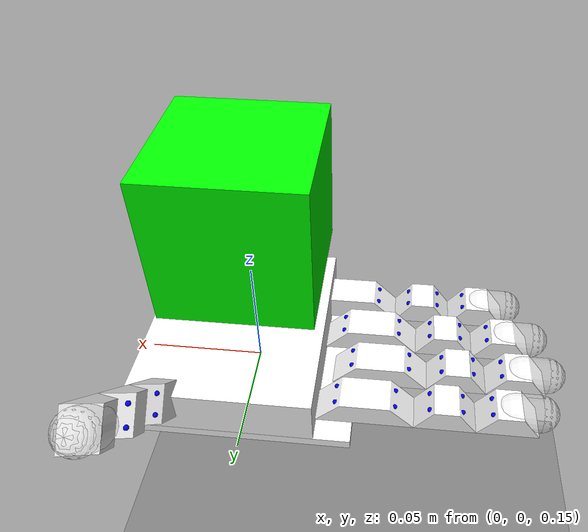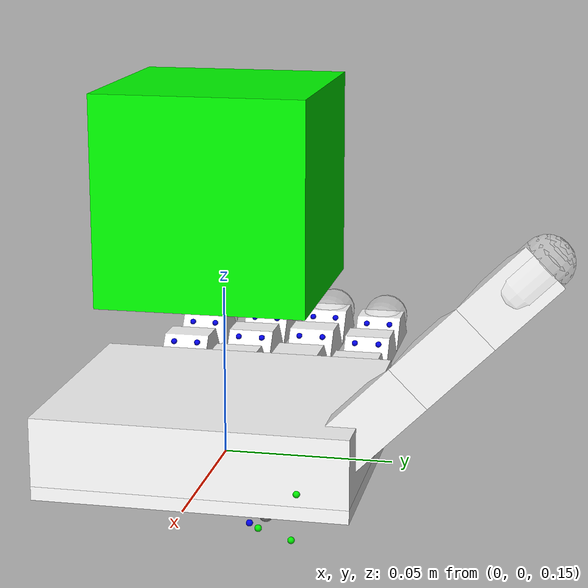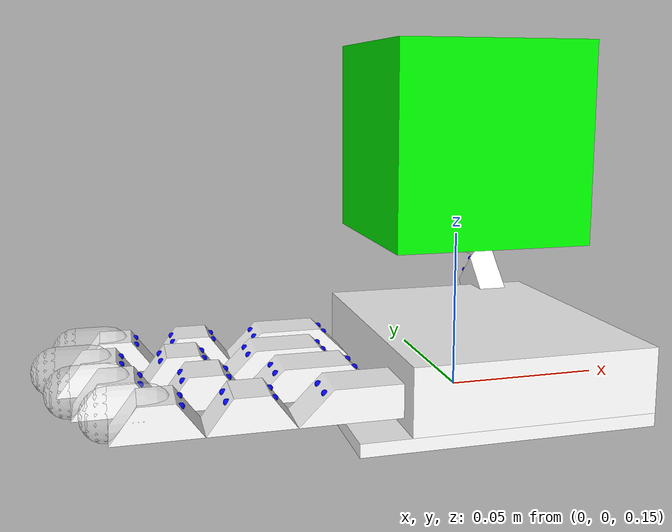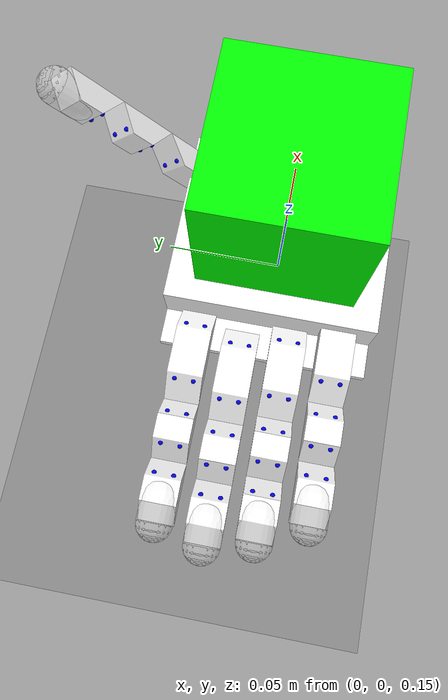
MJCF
<?xml version="1.0" ?>
<!-- Reorient手模型, 5x5 sphere tac sensors -->
<mujoco model="hand">
    <compiler angle="radian"/>
    <option integrator="implicitfast"/>
    <option>
        <flag filterparent="disable"/>
    </option>
    <option gravity="0 0 -9.81"/>
    <keyframe>
        <key name="home"
            qpos="0 0 0 0 0 0 0 0 0 0 0 0 0 0 0 0 0 0 0 0 0 0 0 0 0 0 0 0 0 0 0 0"
            qvel="0 0 0 0 0 0 0 0 0 0 0 0 0 0 0 0 0 0 0 0 0 0 0 0 0 0 0 0 0 0 0"
            ctrl="0 0 0 0 0 0 0 0 0"
        />
    </keyframe>
    <default>
        <geom solref="0.001 1" solimp="0.99 0.999 0.0001"/>
        <default class="cube">
            <geom friction=".3 0.05" conaffinity="2" condim="3"/>
        </default>
    </default>
    <contact>
        <exclude body1="palm" body2="thumb_link_1"/>
        <exclude body1="palm" body2="index_link_1"/>
        <exclude body1="palm" body2="middle_link_1"/>
        <exclude body1="palm" body2="ring_link_1"/>
        <exclude body1="palm" body2="little_link_1"/>
        <exclude body1="palm" body2="thumb_link_2"/>
        <exclude body1="palm" body2="index_link_2"/>
        <exclude body1="palm" body2="middle_link_2"/>
        <exclude body1="palm" body2="ring_link_2"/>
        <exclude body1="palm" body2="little_link_2"/>
        <exclude body1="palm" body2="thumb_link_3"/>
        <exclude body1="palm" body2="index_link_3"/>
        <exclude body1="palm" body2="middle_link_3"/>
        <exclude body1="palm" body2="ring_link_3"/>
        <exclude body1="palm" body2="little_link_3"/>
    </contact>
    <asset>
        <mesh name="thumb_base_link" file="./objs/thumb_base_link.obj"/>
        <mesh name="thumb_link_1" file="./objs/thumb_link_1.obj"/>
        <mesh name="thumb_link_2" file="./objs/thumb_link_2.obj"/>
        <mesh name="thumb_link_3" file="./objs/thumb_link_3.obj"/>
        <mesh name="index_base_link" file="./objs/index_base_link.obj"/>
        <mesh name="index_link_1" file="./objs/index_link_1.obj"/>
        <mesh name="index_link_2" file="./objs/index_link_2.obj"/>
        <mesh name="index_link_3" file="./objs/index_link_3.obj"/>
        <mesh name="middle_base_link" file="./objs/middle_base_link.obj"/>
        <mesh name="middle_link_1" file="./objs/middle_link_1.obj"/>
        <mesh name="middle_link_2" file="./objs/middle_link_2.obj"/>
        <mesh name="middle_link_3" file="./objs/middle_link_3.obj"/>
        <mesh name="ring_base_link" file="./objs/ring_base_link.obj"/>
        <mesh name="ring_link_1" file="./objs/ring_link_1.obj"/>
        <mesh name="ring_link_2" file="./objs/ring_link_2.obj"/>
        <mesh name="ring_link_3" file="./objs/ring_link_3.obj"/>
        <mesh name="little_base_link" file="./objs/little_base_link.obj"/>
        <mesh name="little_link_1" file="./objs/little_link_1.obj"/>
        <mesh name="little_link_2" file="./objs/little_link_2.obj"/>
        <mesh name="little_link_3" file="./objs/little_link_3.obj"/>
        <texture type="2d" name="groundplane" builtin="checker" mark="edge" rgb1="1 1 1" rgb2="0 0 0" markrgb="0 0 0" width="300" height="300"/>
        <material name="groundplane" texture="groundplane" texuniform="true" texrepeat="5 5" reflectance="0"/>
    </asset>
    <worldbody>
        <!-- 一些辅助元素 -->
        <geom name="floor" pos="0 0 0" size="0 0 0.01" type="plane" material="groundplane" contype="1" conaffinity="1" friction="1 0.05 0.05" solref="0.001 1" solimp="0.98 0.99 0.001"/>
        <!-- 手的定义 -->
        <body name="palm" pos="0 0 0.15" euler="3.14 3.14 0">
            <joint name="palm_slide_x" type="slide" axis="1 0 0" range="-.5 .5" limited="true" solreflimit=".001 1" solimplimit="0.97 0.99 0.00001 0.1 2" damping="0.2"/>
            <joint name="palm_slide_y" type="slide" axis="0 1 0" range="-.5 .5" limited="true" solreflimit=".001 1" solimplimit="0.97 0.99 0.00001 0.1 2" damping="0.2"/>
            <joint name="palm_slide_z" type="slide" axis="0 0 1" range="-.2 .12" limited="true" solreflimit=".001 1" solimplimit="0.97 0.99 0.00001 0.1 2" damping="0.2"/>
            <joint name="palm_rotate_x" type="hinge" axis="1 0 0" range="-1.57 1.57" limited="true" solreflimit=".001 1" solimplimit="0.97 0.99 0.00001 0.1 2" damping="0.2"/>
            <joint name="palm_rotate_y" type="hinge" axis="0 1 0" range="-1.57 1.57" limited="true" solreflimit=".001 1" solimplimit="0.97 0.99 0.00001 0.1 2" damping="0.2"/>
            <joint name="palm_rotate_z" type="hinge" axis="0 0 1" range="-3.14 3.14" limited="true" solreflimit=".001 1" solimplimit="0.97 0.99 0.00001 0.1 2" damping="0.2"/>
            <geom type="box" size="0.045 0.045 0.002" rgba="1 1 1 1" density="200"/>
            <geom type="box" size="0.0375 0.045 0.01" pos="-0.0075 0 0.012" rgba="1 1 1 1" density="200"/>
            <body name="thumb_base_link" pos="-0.035 -0.02 -0.005" euler="-0.785 0.0 -1.57">
                <geom conaffinity="0" contype="0" type="sphere" size=".002"/>
                <site name="thumb_ty_1_1" pos="0 0 0.01" size="0.001" rgba="0 0.9 0 1"/>
                <site name="thumb_ty_2_1" pos="0 0 -0.01" size="0.001" rgba="0 0.9 0 1"/>
                <site name="thumb_tx_1_1" pos="0 0.01 0" size="0.001" rgba="0 0.9 0 1"/>
                <site name="thumb_tx_2_1" pos="0 -0.01 0" size="0.001" rgba="0 0.9 0 1"/>
                <site name="thumb_t12" pos="0 0.01 0" size="0.001" rgba="0 0 0.9 1"/>
                <site name="thumb_t0" pos="-0.01 0.01 0" size="0.001" rgba="0 0 0.9 1"/>
                <body name="thumb_link_1" pos="0.015 0 0">
                    <joint name="thumb_universal_1" pos="0 0 0" axis="0 0 1" damping="0.1"/>
                    <joint name="thumb_universal_2" pos="0 0 0" axis="0 1 0" damping="0.1"/>
                    <geom type="box" pos="0.02 0.005 0" size="0.01 0.005 0.0075" name="thumb_link_1_box_center" density="200" friction="0.7 0.05 0.0002" solref="0.02 1.5" solimp="0.9 0.99 0.001" rgba="0 0 1 0"/>
                    <geom type="box" pos="0.03358578654972743 0.004999436911938167 0" size="0.0060674574081405145 0.001 0.0075" euler="0 0 -0.785" name="thumb_link_1_box_slope1" density="200" friction="0.7 0.05 0.0002" solref="0.02 1.5" solimp="0.9 0.99 0.001" rgba="0 0 1 0"/>
                    <geom type="box" pos="0.006414213450272566 0.005000563088061833 0" size="0.0060674574081405145 0.001 0.0075" euler="0 0 0.785" name="thumb_link_1_box_slope2" density="200" friction="0.7 0.05 0.0002" solref="0.02 1.5" solimp="0.9 0.99 0.001" rgba="0 0 1 0"/>
                    <geom type="box" pos="0.02 0.001 0" size="0.018000000000000002 0.001 0.0075" euler="0 0 0" name="thumb_link_1_box_bottom" density="200" friction="0.7 0.05 0.0002" solref="0.02 1.5" solimp="0.9 0.99 0.001" rgba="0 0 1 0"/>
                    <geom conaffinity="0" contype="0" type="mesh" rgba="1 1 1 1" mesh="thumb_link_1"/>
                    <site name="thumb_ty_1_2" pos="0 0 0.01" size="0.001" rgba="0 0.9 0 1"/>
                    <site name="thumb_ty_2_2" pos="0 0 -0.01" size="0.001" rgba="0 0.9 0 1"/>
                    <site name="thumb_tx_1_2" pos="0 0.01 0" size="0.001" rgba="0 0.9 0 1"/>
                    <site name="thumb_tx_2_2" pos="0 -0.01 0" size="0.001" rgba="0 0.9 0 1"/>
                    <site name="thumb_t1_1_1" pos="0.008 0.008 0.004" size="0.001" rgba="0 0 0.9 1"/>
                    <site name="thumb_t2_1_1" pos="0.008 0.008 -0.004" size="0.001" rgba="0 0 0.9 1"/>
                    <site name="thumb_t1_1_2" pos="0.032 0.008 0.004" size="0.001" rgba="0 0 0.9 1"/>
                    <site name="thumb_t2_1_2" pos="0.032 0.008 -0.004" size="0.001" rgba="0 0 0.9 1"/>
                    <body name="thumb_link_2" pos="0.04 0 0">
                        <joint name="thumb_joint_1" pos="0 0 0" axis="0 0 1" stiffness="0.1" springref="0.0" damping="0.2" range="0 3.14"/>
                        <geom type="box" pos="0.0125 0.005 0" size="0.005 0.005 0.0075" name="thumb_link_2_box_center" density="200" friction="0.7 0.05 0.0002" solref="0.02 1.5" solimp="0.9 0.99 0.001" rgba="0 0 1 0"/>
                        <geom type="box" pos="0.019849544644419077 0.005196786170816701 0" size="0.005477355448802637 0.001 0.0075" euler="0 0 -0.925" name="thumb_link_2_box_slope1" density="200" friction="0.7 0.05 0.0002" solref="0.02 1.5" solimp="0.9 0.99 0.001" rgba="0 0 1 0"/>
                        <geom type="box" pos="0.0051504553555809275 0.004803213829183299 0" size="0.005477355448802637 0.001 0.0075" euler="0 0 0.925" name="thumb_link_2_box_slope2" density="200" friction="0.7 0.05 0.0002" solref="0.02 1.5" solimp="0.9 0.99 0.001" rgba="0 0 1 0"/>
                        <geom type="box" pos="0.0125 0.001 0" size="0.0105 0.001 0.0075" euler="0 0 0" name="thumb_link_2_box_bottom" density="200" friction="0.7 0.05 0.0002" solref="0.02 1.5" solimp="0.9 0.99 0.001" rgba="0 0 1 0"/>
                        <geom conaffinity="0" contype="0" type="mesh" rgba="1 1 1 1" mesh="thumb_link_2"/>
                        <site name="thumb_t1_2_1" pos="0.006 0.008 0.004" size="0.001" rgba="0 0 0.9 1"/>
                        <site name="thumb_t2_2_1" pos="0.006 0.008 -0.004" size="0.001" rgba="0 0 0.9 1"/>
                        <site name="thumb_t1_2_2" pos="0.019000000000000003 0.008 0.004" size="0.001" rgba="0 0 0.9 1"/>
                        <site name="thumb_t2_2_2" pos="0.019000000000000003 0.008 -0.004" size="0.001" rgba="0 0 0.9 1"/>
                        <body name="thumb_link_3" pos="0.025 0 0">
                            <joint name="thumb_joint_2" pos="0 0 0" axis="0 0 1" stiffness="0.1" springref="0.0" damping="0.2" range="0 3.14"/>
                            <geom type="box" pos="0.0125 0.005 0" size="0.005 0.005 0.0075" name="thumb_link_3_box_center" density="200" friction="0.7 0.05 0.0002" solref="0.02 1.5" solimp="0.9 0.99 0.001" rgba="0 0 1 0"/>
                            <geom type="box" pos="0.0051504553555809275 0.004803213829183299 0" size="0.005477355448802637 0.001 0.0075" euler="0 0 0.925" name="thumb_link_3_box_slope2" density="200" friction="0.7 0.05 0.0002" solref="0.02 1.5" solimp="0.9 0.99 0.001" rgba="0 0 1 0"/>
                            <geom type="sphere" pos="0.025 0.006 0" size="0.0075" rgba="1 1 1 .3" density="200" friction="0.7 0.05 0.0002" solref="0.02 1.5" solimp="0.9 0.99 0.001"/>
                            <geom type="capsule" euler="0 1.57 0" pos="0.02 0.006 0" size="0.0075 0.005000000000000001" rgba="1 1 1 .3" density="200" friction="0.7 0.05 0.0002" solref="0.02 1.5" solimp="0.9 0.99 0.001"/>
                            <geom conaffinity="0" contype="0" type="mesh" rgba="1 1 1 1" mesh="thumb_link_3"/>
                            <site name="thumb_t1_3" pos="0.006 0.008 0.004" size="0.001" rgba="0 0 0.9 1"/>
                            <site name="thumb_t2_3" pos="0.006 0.008 -0.004" size="0.001" rgba="0 0 0.9 1"/>
                            <body name="thumb_fingertip" pos="0.02 0.01 0" euler="1.57 0 0">
                                <geom conaffinity="0" contype="0" type="sphere" pos="0 0 0" size=".001" rgba=".9 0 0 .1"/>
                            </body>
                        </body>
                    </body>
                </body>
            </body>
            <body name="index_base_link" pos="0.015 -0.03 0.005" euler="1.57 0.0 0.0">
                <!-- visable xyz frames -->
                <joint name="index_swing" axis="0 -1 0" range="0 0.5" damping="0.2"/>
                <geom conaffinity="0" contype="0" type="sphere" size=".002"/>
                <site name="index_t12" pos="0 0 0" size="0.001" rgba="0 0 0.9 1"/>
                <site name="index_t0" pos="-0.01 0 0" size="0.001" rgba="0 0 0.9 1"/>
                <body name="index_link_1" pos="0.015 0 0">
                    <!-- visable xyz frames -->
                    <joint name="index_joint_0" pos="0 0 0" axis="0 0 1" stiffness="0.2" springref="0.0" damping="0.2" range="0 3.14" frictionloss="0.08"/>
                    <geom type="box" pos="0.02 0.005 0" size="0.01 0.005 0.0075" name="index_link_1_box_center" density="200" friction="0.7 0.05 0.0002" solref="0.02 1.5" solimp="0.9 0.99 0.001" rgba="0 0 1 0"/>
                    <geom type="box" pos="0.03358578654972743 0.004999436911938167 0" size="0.0060674574081405145 0.001 0.0075" euler="0 0 -0.785" name="index_link_1_box_slope1" density="200" friction="0.7 0.05 0.0002" solref="0.02 1.5" solimp="0.9 0.99 0.001" rgba="0 0 1 0"/>
                    <geom type="box" pos="0.006414213450272566 0.005000563088061833 0" size="0.0060674574081405145 0.001 0.0075" euler="0 0 0.785" name="index_link_1_box_slope2" density="200" friction="0.7 0.05 0.0002" solref="0.02 1.5" solimp="0.9 0.99 0.001" rgba="0 0 1 0"/>
                    <geom type="box" pos="0.02 0.001 0" size="0.018000000000000002 0.001 0.0075" euler="0 0 0" name="index_link_1_box_bottom" density="200" friction="0.7 0.05 0.0002" solref="0.02 1.5" solimp="0.9 0.99 0.001" rgba="0 0 1 0"/>
                    <geom conaffinity="0" contype="0" type="mesh" rgba="1 1 1 1" mesh="index_link_1"/>
                    <site name="index_t1_1_1" pos="0.008 0.008 0.004" size="0.001" rgba="0 0 0.9 1"/>
                    <site name="index_t2_1_1" pos="0.008 0.008 -0.004" size="0.001" rgba="0 0 0.9 1"/>
                    <site name="index_t1_1_2" pos="0.032 0.008 0.004" size="0.001" rgba="0 0 0.9 1"/>
                    <site name="index_t2_1_2" pos="0.032 0.008 -0.004" size="0.001" rgba="0 0 0.9 1"/>
                    <body name="index_link_2" pos="0.04 0 0">
                        <!-- visable xyz frames -->
                        <joint name="index_joint_1" pos="0 0 0" axis="0 0 1" stiffness="0.2" springref="0.0" damping="0.05" range="0 3.14" frictionloss="0.04"/>
                        <geom type="box" pos="0.0125 0.005 0" size="0.005 0.005 0.0075" name="index_link_2_box_center" density="200" friction="0.7 0.05 0.0002" solref="0.02 1.5" solimp="0.9 0.99 0.001" rgba="0 0 1 0"/>
                        <geom type="box" pos="0.019849544644419077 0.005196786170816701 0" size="0.005477355448802637 0.001 0.0075" euler="0 0 -0.925" name="index_link_2_box_slope1" density="200" friction="0.7 0.05 0.0002" solref="0.02 1.5" solimp="0.9 0.99 0.001" rgba="0 0 1 0"/>
                        <geom type="box" pos="0.0051504553555809275 0.004803213829183299 0" size="0.005477355448802637 0.001 0.0075" euler="0 0 0.925" name="index_link_2_box_slope2" density="200" friction="0.7 0.05 0.0002" solref="0.02 1.5" solimp="0.9 0.99 0.001" rgba="0 0 1 0"/>
                        <geom type="box" pos="0.0125 0.001 0" size="0.0105 0.001 0.0075" euler="0 0 0" name="index_link_2_box_bottom" density="200" friction="0.7 0.05 0.0002" solref="0.02 1.5" solimp="0.9 0.99 0.001" rgba="0 0 1 0"/>
                        <geom conaffinity="0" contype="0" type="mesh" rgba="1 1 1 1" mesh="index_link_2"/>
                        <site name="index_t1_2_1" pos="0.006 0.008 0.004" size="0.001" rgba="0 0 0.9 1"/>
                        <site name="index_t2_2_1" pos="0.006 0.008 -0.004" size="0.001" rgba="0 0 0.9 1"/>
                        <site name="index_t1_2_2" pos="0.019000000000000003 0.008 0.004" size="0.001" rgba="0 0 0.9 1"/>
                        <site name="index_t2_2_2" pos="0.019000000000000003 0.008 -0.004" size="0.001" rgba="0 0 0.9 1"/>
                        <body name="index_link_3" pos="0.025 0 0">
                            <!-- visable xyz frames -->
                            <joint name="index_joint_2" pos="0 0 0" axis="0 0 1" stiffness="0.2" springref="0.0" damping="0.01" range="0 1.3" frictionloss="0.02"/>
                            <geom type="box" pos="0.0125 0.005 0" size="0.005 0.005 0.0075" name="index_link_3_box_center" density="200" friction="0.7 0.05 0.0002" solref="0.02 1.5" solimp="0.9 0.99 0.001" rgba="0 0 1 0"/>
                            <geom type="box" pos="0.0051504553555809275 0.004803213829183299 0" size="0.005477355448802637 0.001 0.0075" euler="0 0 0.925" name="index_link_3_box_slope2" density="200" friction="0.7 0.05 0.0002" solref="0.02 1.5" solimp="0.9 0.99 0.001" rgba="0 0 1 0"/>
                            <geom type="sphere" pos="0.025 0.006 0" size="0.0075" rgba="1 1 1 .3" density="200" friction="0.7 0.05 0.0002" solref="0.02 1.5" solimp="0.9 0.99 0.001"/>
                            <geom type="capsule" euler="0 1.57 0" pos="0.02 0.006 0" size="0.0075 0.005000000000000001" rgba="1 1 1 .3" density="200" friction="0.7 0.05 0.0002" solref="0.02 1.5" solimp="0.9 0.99 0.001"/>
                            <geom conaffinity="0" contype="0" type="mesh" rgba="1 1 1 1" mesh="index_link_3"/>
                            <site name="index_t1_3" pos="0.006 0.008 0.004" size="0.001" rgba="0 0 0.9 1"/>
                            <site name="index_t2_3" pos="0.006 0.008 -0.004" size="0.001" rgba="0 0 0.9 1"/>
                            <body name="index_fingertip" pos="0.02 0.01 0" euler="1.57 0 0">
                                <!-- visable xyz frames -->
                                <geom conaffinity="0" contype="0" type="sphere" pos="0 0 0" size=".001" rgba=".9 0 0 .1"/>
                            </body>
                        </body>
                    </body>
                </body>
            </body>
            <body name="middle_base_link" pos="0.02 -0.01 0.005" euler="1.57 0.0 0.0">
                <site name="middle_t12" pos="0 0 0" size="0.001" rgba="0 0 0.9 1"/>
                <site name="middle_t0" pos="-0.01 0 0" size="0.001" rgba="0 0 0.9 1"/>
                <body name="middle_link_1" pos="0.015 0 0">
                    <joint name="middle_joint_0" pos="0 0 0" axis="0 0 1" stiffness="0.1" springref="0.0" damping="0.2" range="0 3.14"/>
                    <geom type="box" pos="0.02 0.005 0" size="0.01 0.005 0.0075" name="middle_link_1_box_center" density="200" friction="0.7 0.05 0.0002" solref="0.02 1.5" solimp="0.9 0.99 0.001" rgba="0 0 1 0"/>
                    <geom type="box" pos="0.03358578654972743 0.004999436911938167 0" size="0.0060674574081405145 0.001 0.0075" euler="0 0 -0.785" name="middle_link_1_box_slope1" density="200" friction="0.7 0.05 0.0002" solref="0.02 1.5" solimp="0.9 0.99 0.001" rgba="0 0 1 0"/>
                    <geom type="box" pos="0.006414213450272566 0.005000563088061833 0" size="0.0060674574081405145 0.001 0.0075" euler="0 0 0.785" name="middle_link_1_box_slope2" density="200" friction="0.7 0.05 0.0002" solref="0.02 1.5" solimp="0.9 0.99 0.001" rgba="0 0 1 0"/>
                    <geom type="box" pos="0.02 0.001 0" size="0.018000000000000002 0.001 0.0075" euler="0 0 0" name="middle_link_1_box_bottom" density="200" friction="0.7 0.05 0.0002" solref="0.02 1.5" solimp="0.9 0.99 0.001" rgba="0 0 1 0"/>
                    <geom conaffinity="0" contype="0" type="mesh" rgba="1 1 1 1" mesh="middle_link_1"/>
                    <site name="middle_t1_1_1" pos="0.008 0.008 0.004" size="0.001" rgba="0 0 0.9 1"/>
                    <site name="middle_t2_1_1" pos="0.008 0.008 -0.004" size="0.001" rgba="0 0 0.9 1"/>
                    <site name="middle_t1_1_2" pos="0.032 0.008 0.004" size="0.001" rgba="0 0 0.9 1"/>
                    <site name="middle_t2_1_2" pos="0.032 0.008 -0.004" size="0.001" rgba="0 0 0.9 1"/>
                    <body name="middle_link_2" pos="0.04 0 0">
                        <joint name="middle_joint_1" pos="0 0 0" axis="0 0 1" stiffness="0.1" springref="0.0" damping="0.2" range="0 3.14"/>
                        <geom type="box" pos="0.0125 0.005 0" size="0.005 0.005 0.0075" name="middle_link_2_box_center" density="200" friction="0.7 0.05 0.0002" solref="0.02 1.5" solimp="0.9 0.99 0.001" rgba="0 0 1 0"/>
                        <geom type="box" pos="0.019849544644419077 0.005196786170816701 0" size="0.005477355448802637 0.001 0.0075" euler="0 0 -0.925" name="middle_link_2_box_slope1" density="200" friction="0.7 0.05 0.0002" solref="0.02 1.5" solimp="0.9 0.99 0.001" rgba="0 0 1 0"/>
                        <geom type="box" pos="0.0051504553555809275 0.004803213829183299 0" size="0.005477355448802637 0.001 0.0075" euler="0 0 0.925" name="middle_link_2_box_slope2" density="200" friction="0.7 0.05 0.0002" solref="0.02 1.5" solimp="0.9 0.99 0.001" rgba="0 0 1 0"/>
                        <geom type="box" pos="0.0125 0.001 0" size="0.0105 0.001 0.0075" euler="0 0 0" name="middle_link_2_box_bottom" density="200" friction="0.7 0.05 0.0002" solref="0.02 1.5" solimp="0.9 0.99 0.001" rgba="0 0 1 0"/>
                        <geom conaffinity="0" contype="0" type="mesh" rgba="1 1 1 1" mesh="middle_link_2"/>
                        <site name="middle_t1_2_1" pos="0.006 0.008 0.004" size="0.001" rgba="0 0 0.9 1"/>
                        <site name="middle_t2_2_1" pos="0.006 0.008 -0.004" size="0.001" rgba="0 0 0.9 1"/>
                        <site name="middle_t1_2_2" pos="0.019000000000000003 0.008 0.004" size="0.001" rgba="0 0 0.9 1"/>
                        <site name="middle_t2_2_2" pos="0.019000000000000003 0.008 -0.004" size="0.001" rgba="0 0 0.9 1"/>
                        <body name="middle_link_3" pos="0.025 0 0">
                            <joint name="middle_joint_2" pos="0 0 0" axis="0 0 1" stiffness="0.1" springref="0.0" damping="0.2" range="0 1.3"/>
                            <geom type="box" pos="0.0125 0.005 0" size="0.005 0.005 0.0075" name="middle_link_3_box_center" density="200" friction="0.7 0.05 0.0002" solref="0.02 1.5" solimp="0.9 0.99 0.001" rgba="0 0 1 0"/>
                            <geom type="box" pos="0.0051504553555809275 0.004803213829183299 0" size="0.005477355448802637 0.001 0.0075" euler="0 0 0.925" name="middle_link_3_box_slope2" density="200" friction="0.7 0.05 0.0002" solref="0.02 1.5" solimp="0.9 0.99 0.001" rgba="0 0 1 0"/>
                            <geom type="sphere" pos="0.025 0.006 0" size="0.0075" rgba="1 1 1 .3" density="200" friction="0.7 0.05 0.0002" solref="0.02 1.5" solimp="0.9 0.99 0.001"/>
                            <geom type="capsule" euler="0 1.57 0" pos="0.02 0.006 0" size="0.0075 0.005000000000000001" rgba="1 1 1 .3" density="200" friction="0.7 0.05 0.0002" solref="0.02 1.5" solimp="0.9 0.99 0.001"/>
                            <geom conaffinity="0" contype="0" type="mesh" rgba="1 1 1 1" mesh="middle_link_3"/>
                            <site name="middle_t1_3" pos="0.006 0.008 0.004" size="0.001" rgba="0 0 0.9 1"/>
                            <site name="middle_t2_3" pos="0.006 0.008 -0.004" size="0.001" rgba="0 0 0.9 1"/>
                            <body name="middle_fingertip" pos="0.02 0.01 0" euler="1.57 0 0">
                                <geom conaffinity="0" contype="0" type="sphere" pos="0 0 0" size=".001" rgba=".9 0 0 .1"/>
                            </body>
                        </body>
                    </body>
                </body>
            </body>
            <body name="ring_base_link" pos="0.015 0.01 0.005" euler="1.57 0.0 0.0">
                <joint name="ring_swing" axis="0 1 0" range="0 0.5" damping="0.2"/>
                <geom conaffinity="0" contype="0" type="sphere" size=".002"/>
                <site name="ring_t12" pos="0 0 0" size="0.001" rgba="0 0 0.9 1"/>
                <site name="ring_t0" pos="-0.01 0 0" size="0.001" rgba="0 0 0.9 1"/>
                <body name="ring_link_1" pos="0.015 0 0">
                    <joint name="ring_joint_0" pos="0 0 0" axis="0 0 1" stiffness="0.1" springref="0.0" damping="0.2" range="0 3.14"/>
                    <geom type="box" pos="0.02 0.005 0" size="0.01 0.005 0.0075" name="ring_link_1_box_center" density="200" friction="0.7 0.05 0.0002" solref="0.02 1.5" solimp="0.9 0.99 0.001" rgba="0 0 1 0"/>
                    <geom type="box" pos="0.03358578654972743 0.004999436911938167 0" size="0.0060674574081405145 0.001 0.0075" euler="0 0 -0.785" name="ring_link_1_box_slope1" density="200" friction="0.7 0.05 0.0002" solref="0.02 1.5" solimp="0.9 0.99 0.001" rgba="0 0 1 0"/>
                    <geom type="box" pos="0.006414213450272566 0.005000563088061833 0" size="0.0060674574081405145 0.001 0.0075" euler="0 0 0.785" name="ring_link_1_box_slope2" density="200" friction="0.7 0.05 0.0002" solref="0.02 1.5" solimp="0.9 0.99 0.001" rgba="0 0 1 0"/>
                    <geom type="box" pos="0.02 0.001 0" size="0.018000000000000002 0.001 0.0075" euler="0 0 0" name="ring_link_1_box_bottom" density="200" friction="0.7 0.05 0.0002" solref="0.02 1.5" solimp="0.9 0.99 0.001" rgba="0 0 1 0"/>
                    <geom conaffinity="0" contype="0" type="mesh" rgba="1 1 1 1" mesh="ring_link_1"/>
                    <site name="ring_t1_1_1" pos="0.008 0.008 0.004" size="0.001" rgba="0 0 0.9 1"/>
                    <site name="ring_t2_1_1" pos="0.008 0.008 -0.004" size="0.001" rgba="0 0 0.9 1"/>
                    <site name="ring_t1_1_2" pos="0.032 0.008 0.004" size="0.001" rgba="0 0 0.9 1"/>
                    <site name="ring_t2_1_2" pos="0.032 0.008 -0.004" size="0.001" rgba="0 0 0.9 1"/>
                    <body name="ring_link_2" pos="0.04 0 0">
                        <joint name="ring_joint_1" pos="0 0 0" axis="0 0 1" stiffness="0.1" springref="0.0" damping="0.2" range="0 3.14"/>
                        <geom type="box" pos="0.0125 0.005 0" size="0.005 0.005 0.0075" name="ring_link_2_box_center" density="200" friction="0.7 0.05 0.0002" solref="0.02 1.5" solimp="0.9 0.99 0.001" rgba="0 0 1 0"/>
                        <geom type="box" pos="0.019849544644419077 0.005196786170816701 0" size="0.005477355448802637 0.001 0.0075" euler="0 0 -0.925" name="ring_link_2_box_slope1" density="200" friction="0.7 0.05 0.0002" solref="0.02 1.5" solimp="0.9 0.99 0.001" rgba="0 0 1 0"/>
                        <geom type="box" pos="0.0051504553555809275 0.004803213829183299 0" size="0.005477355448802637 0.001 0.0075" euler="0 0 0.925" name="ring_link_2_box_slope2" density="200" friction="0.7 0.05 0.0002" solref="0.02 1.5" solimp="0.9 0.99 0.001" rgba="0 0 1 0"/>
                        <geom type="box" pos="0.0125 0.001 0" size="0.0105 0.001 0.0075" euler="0 0 0" name="ring_link_2_box_bottom" density="200" friction="0.7 0.05 0.0002" solref="0.02 1.5" solimp="0.9 0.99 0.001" rgba="0 0 1 0"/>
                        <geom conaffinity="0" contype="0" type="mesh" rgba="1 1 1 1" mesh="ring_link_2"/>
                        <site name="ring_t1_2_1" pos="0.006 0.008 0.004" size="0.001" rgba="0 0 0.9 1"/>
                        <site name="ring_t2_2_1" pos="0.006 0.008 -0.004" size="0.001" rgba="0 0 0.9 1"/>
                        <site name="ring_t1_2_2" pos="0.019000000000000003 0.008 0.004" size="0.001" rgba="0 0 0.9 1"/>
                        <site name="ring_t2_2_2" pos="0.019000000000000003 0.008 -0.004" size="0.001" rgba="0 0 0.9 1"/>
                        <body name="ring_link_3" pos="0.025 0 0">
                            <joint name="ring_joint_2" pos="0 0 0" axis="0 0 1" stiffness="0.1" springref="0.0" damping="0.2" range="0 1.3"/>
                            <geom type="box" pos="0.0125 0.005 0" size="0.005 0.005 0.0075" name="ring_link_3_box_center" density="200" friction="0.7 0.05 0.0002" solref="0.02 1.5" solimp="0.9 0.99 0.001" rgba="0 0 1 0"/>
                            <geom type="box" pos="0.0051504553555809275 0.004803213829183299 0" size="0.005477355448802637 0.001 0.0075" euler="0 0 0.925" name="ring_link_3_box_slope2" density="200" friction="0.7 0.05 0.0002" solref="0.02 1.5" solimp="0.9 0.99 0.001" rgba="0 0 1 0"/>
                            <geom type="sphere" pos="0.025 0.006 0" size="0.0075" rgba="1 1 1 .3" density="200" friction="0.7 0.05 0.0002" solref="0.02 1.5" solimp="0.9 0.99 0.001"/>
                            <geom type="capsule" euler="0 1.57 0" pos="0.02 0.006 0" size="0.0075 0.005000000000000001" rgba="1 1 1 .3" density="200" friction="0.7 0.05 0.0002" solref="0.02 1.5" solimp="0.9 0.99 0.001"/>
                            <geom conaffinity="0" contype="0" type="mesh" rgba="1 1 1 1" mesh="ring_link_3"/>
                            <site name="ring_t1_3" pos="0.006 0.008 0.004" size="0.001" rgba="0 0 0.9 1"/>
                            <site name="ring_t2_3" pos="0.006 0.008 -0.004" size="0.001" rgba="0 0 0.9 1"/>
                            <body name="ring_fingertip" pos="0.02 0.01 0" euler="1.57 0 0">
                                <geom conaffinity="0" contype="0" type="sphere" pos="0 0 0" size=".001" rgba=".9 0 0 .1"/>
                            </body>
                        </body>
                    </body>
                </body>
            </body>
            <body name="little_base_link" pos="0.005 0.03 0.005" euler="1.57 0.0 0.0">
                <joint name="little_swing" axis="0 1 0" range="0 0.75" damping="0.2"/>
                <geom conaffinity="0" contype="0" type="sphere" size=".002"/>
                <site name="little_t12" pos="0 0 0" size="0.001" rgba="0 0 0.9 1"/>
                <site name="little_t0" pos="-0.01 0 0" size="0.001" rgba="0 0 0.9 1"/>
                <body name="little_link_1" pos="0.015 0 0">
                    <joint name="little_joint_0" pos="0 0 0" axis="0 0 1" stiffness="0.1" springref="0.0" damping="0.2" range="0 3.14"/>
                    <geom type="box" pos="0.02 0.005 0" size="0.01 0.005 0.0075" name="little_link_1_box_center" density="200" friction="0.7 0.05 0.0002" solref="0.02 1.5" solimp="0.9 0.99 0.001" rgba="0 0 1 0"/>
                    <geom type="box" pos="0.03358578654972743 0.004999436911938167 0" size="0.0060674574081405145 0.001 0.0075" euler="0 0 -0.785" name="little_link_1_box_slope1" density="200" friction="0.7 0.05 0.0002" solref="0.02 1.5" solimp="0.9 0.99 0.001" rgba="0 0 1 0"/>
                    <geom type="box" pos="0.006414213450272566 0.005000563088061833 0" size="0.0060674574081405145 0.001 0.0075" euler="0 0 0.785" name="little_link_1_box_slope2" density="200" friction="0.7 0.05 0.0002" solref="0.02 1.5" solimp="0.9 0.99 0.001" rgba="0 0 1 0"/>
                    <geom type="box" pos="0.02 0.001 0" size="0.018000000000000002 0.001 0.0075" euler="0 0 0" name="little_link_1_box_bottom" density="200" friction="0.7 0.05 0.0002" solref="0.02 1.5" solimp="0.9 0.99 0.001" rgba="0 0 1 0"/>
                    <geom conaffinity="0" contype="0" type="mesh" rgba="1 1 1 1" mesh="little_link_1"/>
                    <site name="little_t1_1_1" pos="0.008 0.008 0.004" size="0.001" rgba="0 0 0.9 1"/>
                    <site name="little_t2_1_1" pos="0.008 0.008 -0.004" size="0.001" rgba="0 0 0.9 1"/>
                    <site name="little_t1_1_2" pos="0.032 0.008 0.004" size="0.001" rgba="0 0 0.9 1"/>
                    <site name="little_t2_1_2" pos="0.032 0.008 -0.004" size="0.001" rgba="0 0 0.9 1"/>
                    <body name="little_link_2" pos="0.04 0 0">
                        <joint name="little_joint_1" pos="0 0 0" axis="0 0 1" stiffness="0.1" springref="0.0" damping="0.2" range="0 3.14"/>
                        <geom type="box" pos="0.0125 0.005 0" size="0.005 0.005 0.0075" name="little_link_2_box_center" density="200" friction="0.7 0.05 0.0002" solref="0.02 1.5" solimp="0.9 0.99 0.001" rgba="0 0 1 0"/>
                        <geom type="box" pos="0.019849544644419077 0.005196786170816701 0" size="0.005477355448802637 0.001 0.0075" euler="0 0 -0.925" name="little_link_2_box_slope1" density="200" friction="0.7 0.05 0.0002" solref="0.02 1.5" solimp="0.9 0.99 0.001" rgba="0 0 1 0"/>
                        <geom type="box" pos="0.0051504553555809275 0.004803213829183299 0" size="0.005477355448802637 0.001 0.0075" euler="0 0 0.925" name="little_link_2_box_slope2" density="200" friction="0.7 0.05 0.0002" solref="0.02 1.5" solimp="0.9 0.99 0.001" rgba="0 0 1 0"/>
                        <geom type="box" pos="0.0125 0.001 0" size="0.0105 0.001 0.0075" euler="0 0 0" name="little_link_2_box_bottom" density="200" friction="0.7 0.05 0.0002" solref="0.02 1.5" solimp="0.9 0.99 0.001" rgba="0 0 1 0"/>
                        <geom conaffinity="0" contype="0" type="mesh" rgba="1 1 1 1" mesh="little_link_2"/>
                        <site name="little_t1_2_1" pos="0.006 0.008 0.004" size="0.001" rgba="0 0 0.9 1"/>
                        <site name="little_t2_2_1" pos="0.006 0.008 -0.004" size="0.001" rgba="0 0 0.9 1"/>
                        <site name="little_t1_2_2" pos="0.019000000000000003 0.008 0.004" size="0.001" rgba="0 0 0.9 1"/>
                        <site name="little_t2_2_2" pos="0.019000000000000003 0.008 -0.004" size="0.001" rgba="0 0 0.9 1"/>
                        <body name="little_link_3" pos="0.025 0 0">
                            <joint name="little_joint_2" pos="0 0 0" axis="0 0 1" stiffness="0.1" springref="0.0" damping="0.2" range="0 1.3"/>
                            <geom type="box" pos="0.0125 0.005 0" size="0.005 0.005 0.0075" name="little_link_3_box_center" density="200" friction="0.7 0.05 0.0002" solref="0.02 1.5" solimp="0.9 0.99 0.001" rgba="0 0 1 0"/>
                            <geom type="box" pos="0.0051504553555809275 0.004803213829183299 0" size="0.005477355448802637 0.001 0.0075" euler="0 0 0.925" name="little_link_3_box_slope2" density="200" friction="0.7 0.05 0.0002" solref="0.02 1.5" solimp="0.9 0.99 0.001" rgba="0 0 1 0"/>
                            <geom type="sphere" pos="0.025 0.006 0" size="0.0075" rgba="1 1 1 .3" density="200" friction="0.7 0.05 0.0002" solref="0.02 1.5" solimp="0.9 0.99 0.001"/>
                            <geom type="capsule" euler="0 1.57 0" pos="0.02 0.006 0" size="0.0075 0.005000000000000001" rgba="1 1 1 .3" density="200" friction="0.7 0.05 0.0002" solref="0.02 1.5" solimp="0.9 0.99 0.001"/>
                            <geom conaffinity="0" contype="0" type="mesh" rgba="1 1 1 1" mesh="little_link_3"/>
                            <site name="little_t1_3" pos="0.006 0.008 0.004" size="0.001" rgba="0 0 0.9 1"/>
                            <site name="little_t2_3" pos="0.006 0.008 -0.004" size="0.001" rgba="0 0 0.9 1"/>
                            <body name="little_fingertip" pos="0.02 0.01 0" euler="1.57 0 0">
                                <geom conaffinity="0" contype="0" type="sphere" pos="0 0 0" size=".001" rgba=".9 0 0 .1"/>
                            </body>
                        </body>
                    </body>
                </body>
            </body>
        </body>
        <!-- cube 的定义 -->
        <body name="cube" pos="0.0 0.0 0.23" quat="1 0 0 0" childclass="cube">
            <freejoint name="cube_freejoint"/>
            <geom name="cube" type="box" size=".03 .03 .03" mass=".108" group="0" rgba="0 1 0 1"/>
            <site name="cube_center" pos="0 0 0" group="4"/>
            <!-- add a xyz frame -->
        </body>
    </worldbody>
    <actuator>
        <position name="index_swing" joint="index_swing" ctrllimited="true" ctrlrange="0 0.5" kp="1000" dampratio="2"/>
        <position name="ring_swing" joint="ring_swing" ctrllimited="true" ctrlrange="0 0.5" kp="1000" dampratio="2"/>
        <position name="little_swing" joint="little_swing" ctrllimited="true" ctrlrange="0 0.75" kp="1000" dampratio="2"/>
        <position name="palm_slide_x" joint="palm_slide_x" ctrllimited="true" ctrlrange="-.1 .1" kp="1000" dampratio="1.5"/>
        <position name="palm_slide_y" joint="palm_slide_y" ctrllimited="true" ctrlrange="-.1 .1" kp="1000" dampratio="1.5"/>
        <position name="palm_slide_z" joint="palm_slide_z" ctrllimited="true" ctrlrange="-.2 .1" kp="1000" dampratio="1.5"/>
        <position name="palm_rotate_x" joint="palm_rotate_x" ctrllimited="true" ctrlrange="-.2 .2" kp="1000" dampratio="1.5"/>
        <position name="palm_rotate_y" joint="palm_rotate_y" ctrllimited="true" ctrlrange="-.2 .2" kp="1000" dampratio="1.5"/>
        <position name="palm_rotate_z" joint="palm_rotate_z" ctrllimited="true" ctrlrange="-3.14 3.14" kp="1000" dampratio="1.5"/>
    </actuator>
    <sensor>
        <!-- cube sensor -->
        <framepos name="cube_pos" objtype="body" objname="cube"/>
        <framequat name="cube_quat" objtype="body" objname="cube"/>
        <velocimeter name="cube_linvel" site="cube_center"/>
        <gyro name="cube_angvel" site="cube_center"/>
        <!-- palm pos sensor -->
        <framepos name="palm_pos" objtype="body" objname="palm"/>
        <!-- fingertip pos sensor -->
        <framepos name="thumb_fingertip_pos" objtype="body" objname="thumb_fingertip"/>
        <framepos name="index_fingertip_pos" objtype="body" objname="index_fingertip"/>
        <framepos name="middle_fingertip_pos" objtype="body" objname="middle_fingertip"/>
        <framepos name="ring_fingertip_pos" objtype="body" objname="ring_fingertip"/>
        <framepos name="little_fingertip_pos" objtype="body" objname="little_fingertip"/>
        <!-- quat sensor -->
        <framequat name="index_base_link_quat" objtype="body" objname="index_base_link"/>
        <framequat name="index_link_1_quat" objtype="body" objname="index_link_1"/>
        <framequat name="index_link_2_quat" objtype="body" objname="index_link_2"/>
        <framequat name="index_link_3_quat" objtype="body" objname="index_link_3"/>
        <!-- tendon length sensor -->
    </sensor>
</mujoco>
